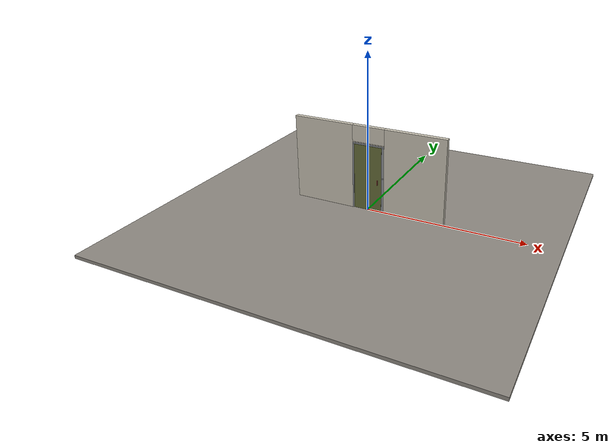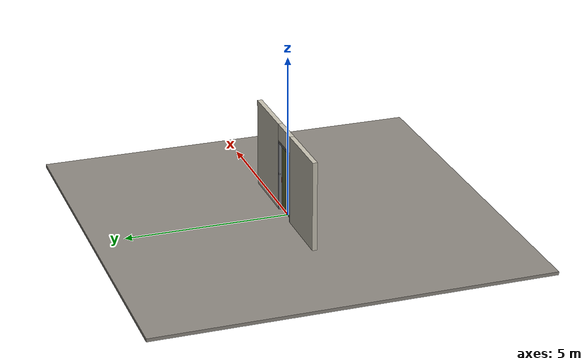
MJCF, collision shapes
<?xml version="1.0" ?>
<mujoco model="db0270_swing_single_minimal">
  <compiler angle="radian" meshdir="../../hardware" texturedir="../../textures" autolimits="true" inertiafromgeom="false"/>
  <option timestep="0.002" integrator="implicitfast" cone="elliptic" impratio="10" noslip_iterations="3">
    <flag multiccd="enable"/>
  </option>
  <size memory="16M"/>
  <default>
    <geom condim="4" solref="0.005 1" solimp="0.95 0.99 0.001"/>
    <joint solreflimit="0.005 1" solimplimit="0.95 0.99 0.001"/>
    <tendon solreflimit="0.005 1"/>
    <equality solref="0.002 1"/>
  </default>
  <visual>
    <headlight ambient="0.4 0.4 0.4" diffuse="0.7 0.7 0.7" specular="0.2 0.2 0.2"/>
    <quality shadowsize="4096"/>
    <map znear="0.01" zfar="60"/>
  </visual>
  <asset>
    <mesh name="pull_1e5d69a91a" file="pull_1e5d69a91a.obj"/>
    <material name="mat_floor" rgba="0.55 0.53 0.5 1" specular="0.2" shininess="0.15" reflectance="0"/>
    <material name="mat_wall" rgba="0.78 0.76 0.7 1" specular="0.2" shininess="0.1" reflectance="0"/>
    <material name="mat_leaf" rgba="0.4 0.42 0.22 1" specular="0.23" shininess="0.5" reflectance="0.02"/>
    <material name="mat_rivet" rgba="0.55 0.56 0.58 1" specular="0.8" shininess="0.55" reflectance="0.4"/>
    <material name="mat_hinge" rgba="0.65 0.66 0.68 1" specular="0.74" shininess="0.5" reflectance="0.36"/>
    <material name="mat_op_stainless" rgba="0.75 0.76 0.77 1" specular="0.8" shininess="0.65" reflectance="0.4"/>
    <material name="mat_deadbolt" rgba="0.85 0.66 0.3 1" specular="0.8" shininess="0.75" reflectance="0.4"/>
    <material name="mat_frame" rgba="0.55 0.56 0.58 1" specular="0.8" shininess="0.55" reflectance="0.4"/>
    <material name="mat_closer" rgba="0.22 0.17 0.13 1" specular="0.8" shininess="0.6" reflectance="0.4"/>
    <material name="mat_placard" rgba="0.95 0.75 0.05 1" specular="0.2" shininess="0.5" reflectance="0"/>
    <texture name="skybox" type="skybox" builtin="gradient" rgb1="0.6 0.7 0.85" rgb2="0.9 0.92 0.95" width="256" height="256"/>
  </asset>
  <worldbody>
    <light name="sun" pos="1.5 -2.5 4" dir="-0.3 0.5 -0.8" directional="true" diffuse="0.8 0.8 0.8" specular="0.3 0.3 0.3" castshadow="true"/>
    <light name="fill" pos="-1.5 2.5 3" dir="0.3 -0.5 -0.7" directional="true" diffuse="0.35 0.35 0.4" castshadow="false"/>
    <camera name="robot_view" pos="0 -2.594313 1.812087" xyaxes="1 0 0 0 0.26963 0.962964" fovy="52"/>
    <camera name="far_view" pos="0 2.681312 1.812087" xyaxes="-1 0 0 0 -0.26963 0.962964" fovy="52"/>
    <camera name="iso" pos="2.004737 -2.172262 2.234138" xyaxes="0.741536 0.670913 0 -0.242917 0.268487 0.932151" fovy="46"/>
    <camera name="detail_handle" pos="0.5315 -0.882 1.296" xyaxes="0.97561 0.219512 0 -0.070934 0.315262 0.94635" fovy="38"/>
    <geom name="floor" type="box" size="6 6 0.05" pos="0 0 -0.05" material="mat_floor" group="0" contype="1" conaffinity="1" friction="0.8 0.005 0.0001" density="2400"/>
    <geom name="wall_left" type="box" size="0.99475 0.0725 1.3735" pos="-1.50525 0.0435 1.3735" material="mat_wall" group="0" contype="1" conaffinity="1" friction="0.6 0.005 0.0001" density="800"/>
    <geom name="wall_right" type="box" size="0.97975 0.0725 1.3735" pos="1.52025 0.0435 1.3735" material="mat_wall" group="0" contype="1" conaffinity="1" friction="0.6 0.005 0.0001" density="800"/>
    <geom name="wall_header" type="box" size="0.5255 0.0725 0.26" pos="0.015 0.0435 2.487" material="mat_wall" group="0" contype="1" conaffinity="1" friction="0.6 0.005 0.0001" density="800"/>
    <geom name="jamb_hinge" type="box" size="0.025 0.0725 1.0735" pos="-0.4855 0.0435 1.0735" material="mat_frame" group="0" contype="1" conaffinity="1" friction="0.6 0.005 0.0001" density="300"/>
    <geom name="strike_1156_wall_n" type="box" size="0.04 0.05325 0.0155" pos="0.5005 0.06275 1.156" material="mat_frame" group="0" contype="1" conaffinity="1" friction="0.6 0.005 0.0001" density="300"/>
    <geom name="strike_1156_wall_p" type="box" size="0.04 0.00975 0.0155" pos="0.5005 -0.01925 1.156" material="mat_frame" group="0" contype="1" conaffinity="1" friction="0.6 0.005 0.0001" density="300"/>
    <geom name="strike_1156_back" type="box" size="0.0253 0.0095 0.0155" pos="0.5152 0 1.156" material="mat_frame" group="0" contype="1" conaffinity="1" friction="0.6 0.005 0.0001" density="300"/>
    <geom name="jamb_strike_0" type="box" size="0.04 0.0725 0.57025" pos="0.5005 0.0435 0.57025" material="mat_frame" group="0" contype="1" conaffinity="1" friction="0.6 0.005 0.0001" density="300"/>
    <geom name="jamb_strike_1" type="box" size="0.04 0.0725 0.48775" pos="0.5005 0.0435 1.65925" material="mat_frame" group="0" contype="1" conaffinity="1" friction="0.6 0.005 0.0001" density="300"/>
    <geom name="jamb_head" type="box" size="0.5255 0.0725 0.025" pos="0.015 0.0435 2.172" material="mat_frame" group="0" contype="1" conaffinity="1" friction="0.6 0.005 0.0001" density="300"/>
    <geom name="head_stud" type="box" size="0.5255 0.0725 0.015" pos="0.015 0.0435 2.212" material="mat_wall" group="0" contype="1" conaffinity="1" friction="0.6 0.005 0.0001" density="500"/>
    <geom name="stop_hinge" type="box" size="0.0055 0.016 1.0735" pos="-0.455 0.0385 1.0735" material="mat_frame" group="0" contype="1" conaffinity="1" friction="0.6 0.005 0.0001" density="300"/>
    <geom name="stop_strike" type="box" size="0.0055 0.016 1.0735" pos="0.455 0.0385 1.0735" material="mat_frame" group="0" contype="1" conaffinity="1" friction="0.6 0.005 0.0001" density="300"/>
    <geom name="stop_head" type="box" size="0.4605 0.016 0.0055" pos="0 0.0385 2.1415" material="mat_frame" group="0" contype="1" conaffinity="1" friction="0.6 0.005 0.0001" density="300"/>
    <site name="approach_point" pos="0 -1.5 0" quat="1 0 0 0" size="0.05" rgba="0.2 0.9 0.2 0.5" group="4"/>
    <site name="goal_point" pos="0 1.5 0" quat="1 0 0 0" size="0.05" rgba="0.2 0.9 0.2 0.5" group="4"/>
    <site name="door_plane_center" pos="0 0 1.0735" quat="1 0 0 0" size="0.02" rgba="0.2 0.9 0.2 0.5" group="4"/>
    <body name="leaf" pos="-0.4605 0 0">
      <inertial pos="0.463752 0 1.07536" mass="88.585433" quat="0.500182 -0.500182 0.499818 0.499818" diaginertia="6.236471407 33.285237705 39.482800454"/>
      <joint name="leaf_hinge" type="hinge" axis="0 0 -1" pos="0.003 -0.029 0" limited="true" range="0 1.745329" damping="12.268966" frictionloss="1.088256" stiffness="16.883156" springref="-2.607925" armature="0.02"/>
      <geom name="leaf_slab" type="box" size="0.457 0.022 1.067" pos="0.46 0 1.076" material="mat_leaf" group="0" contype="1" conaffinity="1" friction="0.45 0.005 0.0001" density="1"/>
      <geom name="leaf_pull_n" type="mesh" mesh="pull_1e5d69a91a" pos="0.812 -0.022 1.016" quat="0.707107 0.707107 0 0" material="mat_op_stainless" group="1" contype="0" conaffinity="0" density="3000"/>
      <geom name="leaf_pull_col_n" type="capsule" size="0.0095 0.08" pos="0.812 -0.082 1.016" material="mat_op_stainless" group="3" contype="1" conaffinity="1" rgba="0.8 0.3 0.3 0.25" friction="0.7 0.01 0.0001" density="3000"/>
      <geom name="leaf_pull_p" type="mesh" mesh="pull_1e5d69a91a" pos="0.812 0.022 1.016" quat="-0.707107 0.707107 0 0" material="mat_op_stainless" group="1" contype="0" conaffinity="0" density="3000"/>
      <geom name="leaf_pull_col_p" type="capsule" size="0.0095 0.08" pos="0.812 0.082 1.016" material="mat_op_stainless" group="3" contype="1" conaffinity="1" rgba="0.8 0.3 0.3 0.25" friction="0.7 0.01 0.0001" density="3000"/>
      <site name="leaf_pull_grip_n" pos="0.812 -0.082 1.016" quat="1 0 0 0" size="0.012" rgba="0.2 0.9 0.2 0.5" group="4"/>
      <site name="leaf_pull_grip_p" pos="0.812 0.082 1.016" quat="1 0 0 0" size="0.012" rgba="0.2 0.9 0.2 0.5" group="4"/>
      <site name="leaf_edge_mid" pos="0.917 0 1.067" quat="1 0 0 0" size="0.02" rgba="0.2 0.9 0.2 0.5" group="4"/>
    </body>
  </worldbody>
  <sensor>
    <jointpos name="leaf_hinge_pos" joint="leaf_hinge"/>
    <jointvel name="leaf_hinge_vel" joint="leaf_hinge"/>
  </sensor>
</mujoco>
